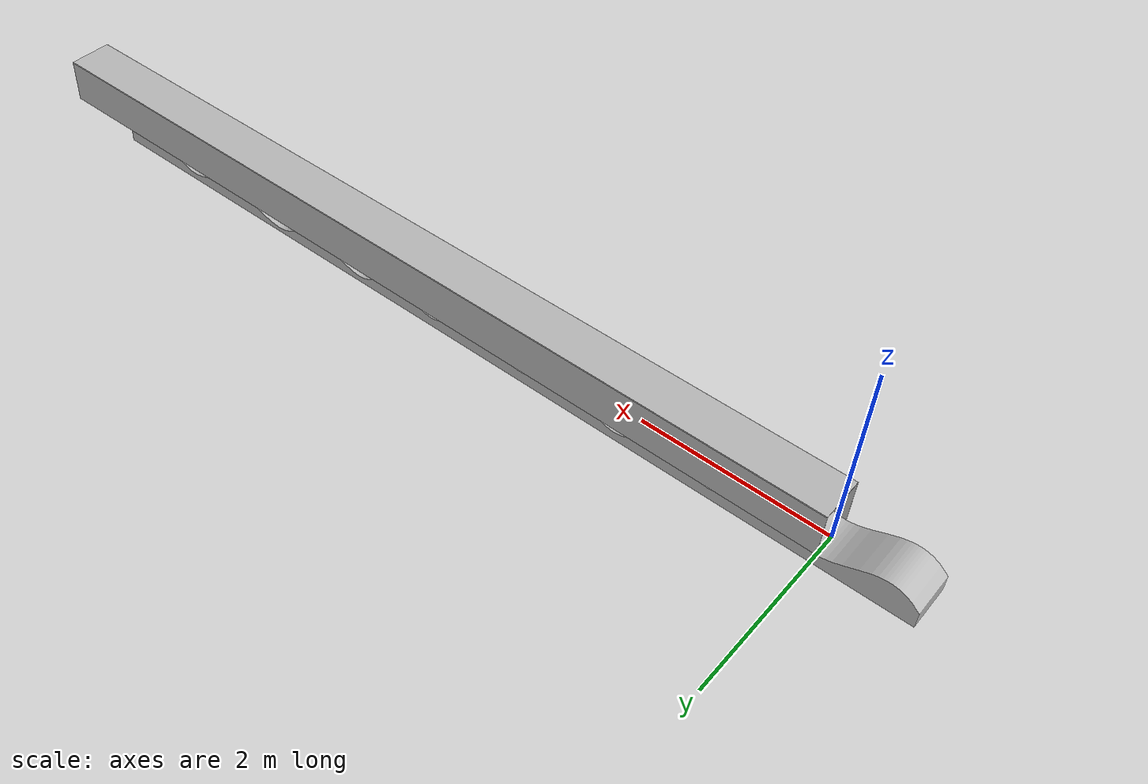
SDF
<?xml version='1.0'?>
<sdf version="1.4">
  <model name="wave_hallway">
    <static>true</static>
    <link name="right_wall">
      <pose>5 -0.25 0.25 0 0 0</pose>
      <visual name="visual">
        <geometry>
          <box>
            <size>10 0.01 0.5</size>
          </box>
        </geometry>
        <collision>
                <geometry>
          <box>
            <size>10 0.01 0.5</size>
          </box>
        </geometry>
        </collision>
        <material>
          <script>
            <uri>model://hallway/materials/scripts</uri>
            <name>feature_1</name>
          </script>
        </material>
      </visual>
    </link>
    <link name="left_wall">
      <pose>5 0.25 0.25 0 0 0</pose>
      <visual name="visual">
        <geometry>
          <box>
            <size>10 0.01 0.5</size>
          </box>
        </geometry>
        <material>
          <script>
            <uri>model://hallway/materials/scripts</uri>
            <name>feature_2</name>
          </script>
        </material>
      </visual>
      <collision name="collision">
        <geometry>
          <box>
            <size>1 1 1</size>
          </box>
        </geometry>
      </collision>
    </link>
    <link name="bot_wall">
      <pose>-0.95 0.25 -0.205 1.57 0 0</pose>
      <visual name="visual">
        <geometry>
            <mesh>
                <uri>model://wave_hallway/meshes/waves.dae</uri>
                <scale>0.001 0.0005 0.001</scale>
            </mesh>
        </geometry>
        <material>
          <script>
            <uri>model://wave_hallway/materials/scripts</uri>
            <name>feature_1</name>
          </script>
        </material>
      </visual>
      <collision name="collision">
        <geometry>
        <mesh>
            <uri>model://wave_hallway/meshes/waves.dae</uri>
            <scale>0.001 0.0005 0.001</scale>
        </mesh>
        </geometry>
    </collision>
    </link>
    <link name="top_wall">
      <pose>5 0 0.5 0 0 0</pose>
      <visual name="visual">
        <geometry>
          <box>
            <size>10 0.5 0.01</size>
          </box>
        </geometry>
        <material>
          <script>
            <uri>model://hallway/materials/scripts</uri>
            <name>feature_4</name>
          </script>
        </material>
      </visual>
    </link>
  </model>
</sdf>
